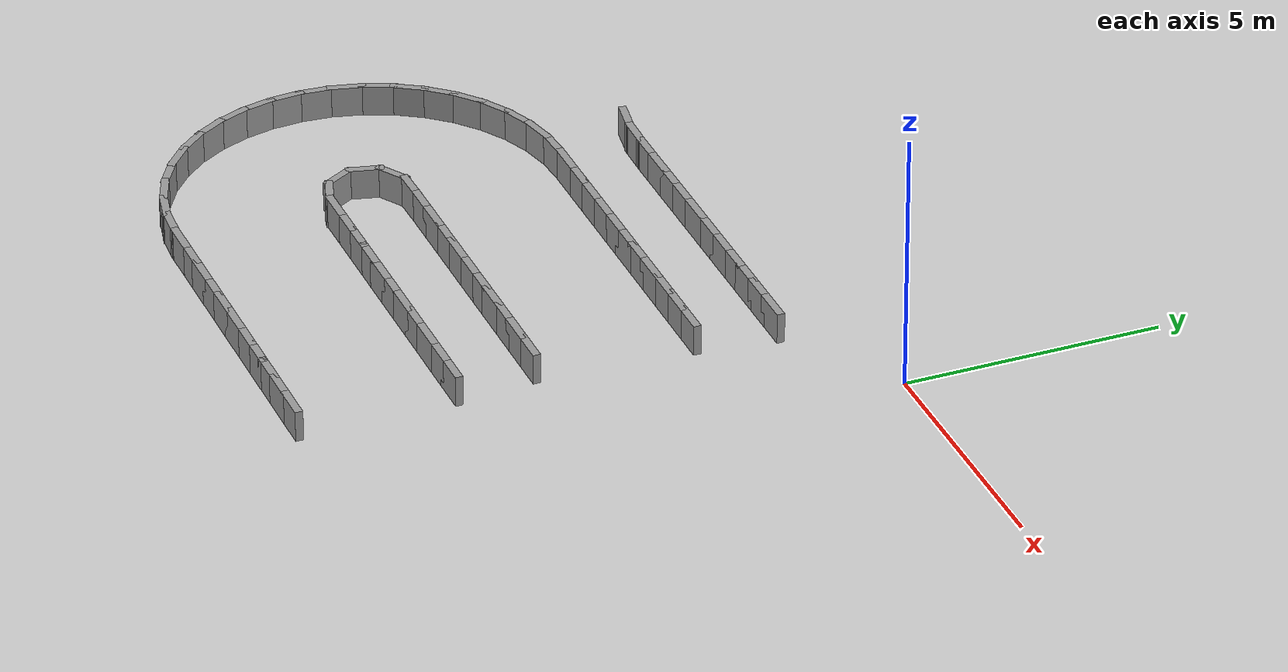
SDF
<sdf version="1.7">
 <world name="default">
  <model name="ground_plane">
   <static>1</static>
   <link name="link">
    <collision name="collision">
     <geometry><plane><normal>0 0 1</normal><size>100 100</size></plane></geometry>
     <surface><friction><ode><mu>100</mu><mu2>50</mu2></ode></friction></surface>
    </collision>
    <visual name="visual">
     <cast_shadows>0</cast_shadows>
     <geometry><plane><normal>0 0 1</normal><size>100 100</size></plane></geometry>
     <material>
      <script><uri>file://media/materials/scripts/gazebo.material</uri><name>Gazebo/Grey</name></script>
     </material>
    </visual>
   </link>
  </model>
  <model name="rand_serp_02">
   <link name="Wall_155">
    <collision name="Wall_155_Collision">
     <geometry><box><size>0.7500 0.1500 0.6000</size></box></geometry>
     <pose>0 0 0.3000 0 -0 0</pose>
    </collision>
    <visual name="Wall_155_Visual">
     <pose>0 0 0.3000 0 -0 0</pose>
     <geometry><box><size>0.7500 0.1500 0.6000</size></box></geometry>
     <material>
      <script><uri>file://media/materials/scripts/gazebo.material</uri><name>Gazebo/Grey</name></script>
      <ambient>1 1 1 1</ambient>
     </material>
    </visual>
    <pose>-2.8873 -6.0606 0 0 -0 3.14159</pose>
   </link>
   <link name="Wall_156">
    <collision name="Wall_156_Collision">
     <geometry><box><size>0.7500 0.1500 0.6000</size></box></geometry>
     <pose>0 0 0.3000 0 -0 0</pose>
    </collision>
    <visual name="Wall_156_Visual">
     <pose>0 0 0.3000 0 -0 0</pose>
     <geometry><box><size>0.7500 0.1500 0.6000</size></box></geometry>
     <material>
      <script><uri>file://media/materials/scripts/gazebo.material</uri><name>Gazebo/Grey</name></script>
      <ambient>1 1 1 1</ambient>
     </material>
    </visual>
    <pose>-3.4873 -6.0606 0 0 -0 3.14159</pose>
   </link>
   <link name="Wall_157">
    <collision name="Wall_157_Collision">
     <geometry><box><size>0.7500 0.1500 0.6000</size></box></geometry>
     <pose>0 0 0.3000 0 -0 0</pose>
    </collision>
    <visual name="Wall_157_Visual">
     <pose>0 0 0.3000 0 -0 0</pose>
     <geometry><box><size>0.7500 0.1500 0.6000</size></box></geometry>
     <material>
      <script><uri>file://media/materials/scripts/gazebo.material</uri><name>Gazebo/Grey</name></script>
      <ambient>1 1 1 1</ambient>
     </material>
    </visual>
    <pose>-4.0873 -6.0606 0 0 -0 3.14159</pose>
   </link>
   <link name="Wall_158">
    <collision name="Wall_158_Collision">
     <geometry><box><size>0.7500 0.1500 0.6000</size></box></geometry>
     <pose>0 0 0.3000 0 -0 0</pose>
    </collision>
    <visual name="Wall_158_Visual">
     <pose>0 0 0.3000 0 -0 0</pose>
     <geometry><box><size>0.7500 0.1500 0.6000</size></box></geometry>
     <material>
      <script><uri>file://media/materials/scripts/gazebo.material</uri><name>Gazebo/Grey</name></script>
      <ambient>1 1 1 1</ambient>
     </material>
    </visual>
    <pose>-4.6873 -6.0606 0 0 -0 3.14159</pose>
   </link>
   <link name="Wall_159">
    <collision name="Wall_159_Collision">
     <geometry><box><size>0.7500 0.1500 0.6000</size></box></geometry>
     <pose>0 0 0.3000 0 -0 0</pose>
    </collision>
    <visual name="Wall_159_Visual">
     <pose>0 0 0.3000 0 -0 0</pose>
     <geometry><box><size>0.7500 0.1500 0.6000</size></box></geometry>
     <material>
      <script><uri>file://media/materials/scripts/gazebo.material</uri><name>Gazebo/Grey</name></script>
      <ambient>1 1 1 1</ambient>
     </material>
    </visual>
    <pose>-5.2873 -6.0606 0 0 -0 3.14159</pose>
   </link>
   <link name="Wall_160">
    <collision name="Wall_160_Collision">
     <geometry><box><size>0.7500 0.1500 0.6000</size></box></geometry>
     <pose>0 0 0.3000 0 -0 0</pose>
    </collision>
    <visual name="Wall_160_Visual">
     <pose>0 0 0.3000 0 -0 0</pose>
     <geometry><box><size>0.7500 0.1500 0.6000</size></box></geometry>
     <material>
      <script><uri>file://media/materials/scripts/gazebo.material</uri><name>Gazebo/Grey</name></script>
      <ambient>1 1 1 1</ambient>
     </material>
    </visual>
    <pose>-5.8873 -6.0606 0 0 -0 3.14159</pose>
   </link>
   <link name="Wall_161">
    <collision name="Wall_161_Collision">
     <geometry><box><size>0.7500 0.1500 0.6000</size></box></geometry>
     <pose>0 0 0.3000 0 -0 0</pose>
    </collision>
    <visual name="Wall_161_Visual">
     <pose>0 0 0.3000 0 -0 0</pose>
     <geometry><box><size>0.7500 0.1500 0.6000</size></box></geometry>
     <material>
      <script><uri>file://media/materials/scripts/gazebo.material</uri><name>Gazebo/Grey</name></script>
      <ambient>1 1 1 1</ambient>
     </material>
    </visual>
    <pose>-6.4873 -6.0606 0 0 -0 3.14159</pose>
   </link>
   <link name="Wall_162">
    <collision name="Wall_162_Collision">
     <geometry><box><size>0.7500 0.1500 0.6000</size></box></geometry>
     <pose>0 0 0.3000 0 -0 0</pose>
    </collision>
    <visual name="Wall_162_Visual">
     <pose>0 0 0.3000 0 -0 0</pose>
     <geometry><box><size>0.7500 0.1500 0.6000</size></box></geometry>
     <material>
      <script><uri>file://media/materials/scripts/gazebo.material</uri><name>Gazebo/Grey</name></script>
      <ambient>1 1 1 1</ambient>
     </material>
    </visual>
    <pose>-7.0873 -6.0606 0 0 -0 3.14159</pose>
   </link>
   <link name="Wall_163">
    <collision name="Wall_163_Collision">
     <geometry><box><size>0.7500 0.1500 0.6000</size></box></geometry>
     <pose>0 0 0.3000 0 -0 0</pose>
    </collision>
    <visual name="Wall_163_Visual">
     <pose>0 0 0.3000 0 -0 0</pose>
     <geometry><box><size>0.7500 0.1500 0.6000</size></box></geometry>
     <material>
      <script><uri>file://media/materials/scripts/gazebo.material</uri><name>Gazebo/Grey</name></script>
      <ambient>1 1 1 1</ambient>
     </material>
    </visual>
    <pose>-7.6873 -6.0606 0 0 -0 3.14159</pose>
   </link>
   <link name="Wall_164">
    <collision name="Wall_164_Collision">
     <geometry><box><size>0.7500 0.1500 0.6000</size></box></geometry>
     <pose>0 0 0.3000 0 -0 0</pose>
    </collision>
    <visual name="Wall_164_Visual">
     <pose>0 0 0.3000 0 -0 0</pose>
     <geometry><box><size>0.7500 0.1500 0.6000</size></box></geometry>
     <material>
      <script><uri>file://media/materials/scripts/gazebo.material</uri><name>Gazebo/Grey</name></script>
      <ambient>1 1 1 1</ambient>
     </material>
    </visual>
    <pose>-8.2873 -6.0606 0 0 -0 3.14159</pose>
   </link>
   <link name="Wall_165">
    <collision name="Wall_165_Collision">
     <geometry><box><size>0.7496 0.1500 0.6000</size></box></geometry>
     <pose>0 0 0.3000 0 -0 0</pose>
    </collision>
    <visual name="Wall_165_Visual">
     <pose>0 0 0.3000 0 -0 0</pose>
     <geometry><box><size>0.7496 0.1500 0.6000</size></box></geometry>
     <material>
      <script><uri>file://media/materials/scripts/gazebo.material</uri><name>Gazebo/Grey</name></script>
      <ambient>1 1 1 1</ambient>
     </material>
    </visual>
    <pose>-8.8870 -6.0654 0 0 -0 -3.12563</pose>
   </link>
   <link name="Wall_166">
    <collision name="Wall_166_Collision">
     <geometry><box><size>0.7349 0.1500 0.6000</size></box></geometry>
     <pose>0 0 0.3000 0 -0 0</pose>
    </collision>
    <visual name="Wall_166_Visual">
     <pose>0 0 0.3000 0 -0 0</pose>
     <geometry><box><size>0.7349 0.1500 0.6000</size></box></geometry>
     <material>
      <script><uri>file://media/materials/scripts/gazebo.material</uri><name>Gazebo/Grey</name></script>
      <ambient>1 1 1 1</ambient>
     </material>
    </visual>
    <pose>-9.4365 -6.2224 0 0 -0 -2.59439</pose>
   </link>
   <link name="Wall_167">
    <collision name="Wall_167_Collision">
     <geometry><box><size>0.7349 0.1500 0.6000</size></box></geometry>
     <pose>0 0 0.3000 0 -0 0</pose>
    </collision>
    <visual name="Wall_167_Visual">
     <pose>0 0 0.3000 0 -0 0</pose>
     <geometry><box><size>0.7349 0.1500 0.6000</size></box></geometry>
     <material>
      <script><uri>file://media/materials/scripts/gazebo.material</uri><name>Gazebo/Grey</name></script>
      <ambient>1 1 1 1</ambient>
     </material>
    </visual>
    <pose>-9.7573 -6.6582 0 0 -0 -1.81590</pose>
   </link>
   <link name="Wall_168">
    <collision name="Wall_168_Collision">
     <geometry><box><size>0.7349 0.1500 0.6000</size></box></geometry>
     <pose>0 0 0.3000 0 -0 0</pose>
    </collision>
    <visual name="Wall_168_Visual">
     <pose>0 0 0.3000 0 -0 0</pose>
     <geometry><box><size>0.7349 0.1500 0.6000</size></box></geometry>
     <material>
      <script><uri>file://media/materials/scripts/gazebo.material</uri><name>Gazebo/Grey</name></script>
      <ambient>1 1 1 1</ambient>
     </material>
    </visual>
    <pose>-9.6794 -7.1937 0 0 -0 -1.03686</pose>
   </link>
   <link name="Wall_169">
    <collision name="Wall_169_Collision">
     <geometry><box><size>0.6794 0.1500 0.6000</size></box></geometry>
     <pose>0 0 0.3000 0 -0 0</pose>
    </collision>
    <visual name="Wall_169_Visual">
     <pose>0 0 0.3000 0 -0 0</pose>
     <geometry><box><size>0.6794 0.1500 0.6000</size></box></geometry>
     <material>
      <script><uri>file://media/materials/scripts/gazebo.material</uri><name>Gazebo/Grey</name></script>
      <ambient>1 1 1 1</ambient>
     </material>
    </visual>
    <pose>-9.2776 -7.5235 0 0 -0 -0.29921</pose>
   </link>
   <link name="Wall_170">
    <collision name="Wall_170_Collision">
     <geometry><box><size>0.7500 0.1500 0.6000</size></box></geometry>
     <pose>0 0 0.3000 0 -0 0</pose>
    </collision>
    <visual name="Wall_170_Visual">
     <pose>0 0 0.3000 0 -0 0</pose>
     <geometry><box><size>0.7500 0.1500 0.6000</size></box></geometry>
     <material>
      <script><uri>file://media/materials/scripts/gazebo.material</uri><name>Gazebo/Grey</name></script>
      <ambient>1 1 1 1</ambient>
     </material>
    </visual>
    <pose>-8.7246 -7.6015 0 0 -0 0.00000</pose>
   </link>
   <link name="Wall_171">
    <collision name="Wall_171_Collision">
     <geometry><box><size>0.7500 0.1500 0.6000</size></box></geometry>
     <pose>0 0 0.3000 0 -0 0</pose>
    </collision>
    <visual name="Wall_171_Visual">
     <pose>0 0 0.3000 0 -0 0</pose>
     <geometry><box><size>0.7500 0.1500 0.6000</size></box></geometry>
     <material>
      <script><uri>file://media/materials/scripts/gazebo.material</uri><name>Gazebo/Grey</name></script>
      <ambient>1 1 1 1</ambient>
     </material>
    </visual>
    <pose>-8.1246 -7.6015 0 0 -0 0.00000</pose>
   </link>
   <link name="Wall_172">
    <collision name="Wall_172_Collision">
     <geometry><box><size>0.7500 0.1500 0.6000</size></box></geometry>
     <pose>0 0 0.3000 0 -0 0</pose>
    </collision>
    <visual name="Wall_172_Visual">
     <pose>0 0 0.3000 0 -0 0</pose>
     <geometry><box><size>0.7500 0.1500 0.6000</size></box></geometry>
     <material>
      <script><uri>file://media/materials/scripts/gazebo.material</uri><name>Gazebo/Grey</name></script>
      <ambient>1 1 1 1</ambient>
     </material>
    </visual>
    <pose>-7.5246 -7.6015 0 0 -0 0.00000</pose>
   </link>
   <link name="Wall_173">
    <collision name="Wall_173_Collision">
     <geometry><box><size>0.7500 0.1500 0.6000</size></box></geometry>
     <pose>0 0 0.3000 0 -0 0</pose>
    </collision>
    <visual name="Wall_173_Visual">
     <pose>0 0 0.3000 0 -0 0</pose>
     <geometry><box><size>0.7500 0.1500 0.6000</size></box></geometry>
     <material>
      <script><uri>file://media/materials/scripts/gazebo.material</uri><name>Gazebo/Grey</name></script>
      <ambient>1 1 1 1</ambient>
     </material>
    </visual>
    <pose>-6.9246 -7.6015 0 0 -0 0.00000</pose>
   </link>
   <link name="Wall_174">
    <collision name="Wall_174_Collision">
     <geometry><box><size>0.7500 0.1500 0.6000</size></box></geometry>
     <pose>0 0 0.3000 0 -0 0</pose>
    </collision>
    <visual name="Wall_174_Visual">
     <pose>0 0 0.3000 0 -0 0</pose>
     <geometry><box><size>0.7500 0.1500 0.6000</size></box></geometry>
     <material>
      <script><uri>file://media/materials/scripts/gazebo.material</uri><name>Gazebo/Grey</name></script>
      <ambient>1 1 1 1</ambient>
     </material>
    </visual>
    <pose>-6.3246 -7.6015 0 0 -0 0.00000</pose>
   </link>
   <link name="Wall_175">
    <collision name="Wall_175_Collision">
     <geometry><box><size>0.7500 0.1500 0.6000</size></box></geometry>
     <pose>0 0 0.3000 0 -0 0</pose>
    </collision>
    <visual name="Wall_175_Visual">
     <pose>0 0 0.3000 0 -0 0</pose>
     <geometry><box><size>0.7500 0.1500 0.6000</size></box></geometry>
     <material>
      <script><uri>file://media/materials/scripts/gazebo.material</uri><name>Gazebo/Grey</name></script>
      <ambient>1 1 1 1</ambient>
     </material>
    </visual>
    <pose>-5.7246 -7.6015 0 0 -0 0.00000</pose>
   </link>
   <link name="Wall_176">
    <collision name="Wall_176_Collision">
     <geometry><box><size>0.7500 0.1500 0.6000</size></box></geometry>
     <pose>0 0 0.3000 0 -0 0</pose>
    </collision>
    <visual name="Wall_176_Visual">
     <pose>0 0 0.3000 0 -0 0</pose>
     <geometry><box><size>0.7500 0.1500 0.6000</size></box></geometry>
     <material>
      <script><uri>file://media/materials/scripts/gazebo.material</uri><name>Gazebo/Grey</name></script>
      <ambient>1 1 1 1</ambient>
     </material>
    </visual>
    <pose>-5.1246 -7.6015 0 0 -0 0.00000</pose>
   </link>
   <link name="Wall_177">
    <collision name="Wall_177_Collision">
     <geometry><box><size>0.7500 0.1500 0.6000</size></box></geometry>
     <pose>0 0 0.3000 0 -0 0</pose>
    </collision>
    <visual name="Wall_177_Visual">
     <pose>0 0 0.3000 0 -0 0</pose>
     <geometry><box><size>0.7500 0.1500 0.6000</size></box></geometry>
     <material>
      <script><uri>file://media/materials/scripts/gazebo.material</uri><name>Gazebo/Grey</name></script>
      <ambient>1 1 1 1</ambient>
     </material>
    </visual>
    <pose>-4.5246 -7.6015 0 0 -0 0.00000</pose>
   </link>
   <link name="Wall_178">
    <collision name="Wall_178_Collision">
     <geometry><box><size>0.7500 0.1500 0.6000</size></box></geometry>
     <pose>0 0 0.3000 0 -0 0</pose>
    </collision>
    <visual name="Wall_178_Visual">
     <pose>0 0 0.3000 0 -0 0</pose>
     <geometry><box><size>0.7500 0.1500 0.6000</size></box></geometry>
     <material>
      <script><uri>file://media/materials/scripts/gazebo.material</uri><name>Gazebo/Grey</name></script>
      <ambient>1 1 1 1</ambient>
     </material>
    </visual>
    <pose>-3.9246 -7.6015 0 0 -0 0.00000</pose>
   </link>
   <link name="Wall_179">
    <collision name="Wall_179_Collision">
     <geometry><box><size>0.7500 0.1500 0.6000</size></box></geometry>
     <pose>0 0 0.3000 0 -0 0</pose>
    </collision>
    <visual name="Wall_179_Visual">
     <pose>0 0 0.3000 0 -0 0</pose>
     <geometry><box><size>0.7500 0.1500 0.6000</size></box></geometry>
     <material>
      <script><uri>file://media/materials/scripts/gazebo.material</uri><name>Gazebo/Grey</name></script>
      <ambient>1 1 1 1</ambient>
     </material>
    </visual>
    <pose>-3.3246 -7.6015 0 0 -0 0.00000</pose>
   </link>
   <link name="Wall_180">
    <collision name="Wall_180_Collision">
     <geometry><box><size>0.7500 0.1500 0.6000</size></box></geometry>
     <pose>0 0 0.3000 0 -0 0</pose>
    </collision>
    <visual name="Wall_180_Visual">
     <pose>0 0 0.3000 0 -0 0</pose>
     <geometry><box><size>0.7500 0.1500 0.6000</size></box></geometry>
     <material>
      <script><uri>file://media/materials/scripts/gazebo.material</uri><name>Gazebo/Grey</name></script>
      <ambient>1 1 1 1</ambient>
     </material>
    </visual>
    <pose>-2.7246 -7.6015 0 0 -0 0.00000</pose>
   </link>
   <link name="Wall_286">
    <collision name="Wall_286_Collision">
     <geometry><box><size>0.7493 0.1500 0.6000</size></box></geometry>
     <pose>0 0 0.3000 0 -0 0</pose>
    </collision>
    <visual name="Wall_286_Visual">
     <pose>0 0 0.3000 0 -0 0</pose>
     <geometry><box><size>0.7493 0.1500 0.6000</size></box></geometry>
     <material>
      <script><uri>file://media/materials/scripts/gazebo.material</uri><name>Gazebo/Grey</name></script>
      <ambient>1 1 1 1</ambient>
     </material>
    </visual>
    <pose>-9.6903 -1.4422 0 0 -0 -0.16632</pose>
   </link>
   <link name="Wall_287">
    <collision name="Wall_287_Collision">
     <geometry><box><size>0.7497 0.1500 0.6000</size></box></geometry>
     <pose>0 0 0.3000 0 -0 0</pose>
    </collision>
    <visual name="Wall_287_Visual">
     <pose>0 0 0.3000 0 -0 0</pose>
     <geometry><box><size>0.7497 0.1500 0.6000</size></box></geometry>
     <material>
      <script><uri>file://media/materials/scripts/gazebo.material</uri><name>Gazebo/Grey</name></script>
      <ambient>1 1 1 1</ambient>
     </material>
    </visual>
    <pose>-9.0950 -1.4992 0 0 -0 -0.02466</pose>
   </link>
   <link name="Wall_288">
    <collision name="Wall_288_Collision">
     <geometry><box><size>0.7500 0.1500 0.6000</size></box></geometry>
     <pose>0 0 0.3000 0 -0 0</pose>
    </collision>
    <visual name="Wall_288_Visual">
     <pose>0 0 0.3000 0 -0 0</pose>
     <geometry><box><size>0.7500 0.1500 0.6000</size></box></geometry>
     <material>
      <script><uri>file://media/materials/scripts/gazebo.material</uri><name>Gazebo/Grey</name></script>
      <ambient>1 1 1 1</ambient>
     </material>
    </visual>
    <pose>-8.4952 -1.5066 0 0 -0 0.00000</pose>
   </link>
   <link name="Wall_289">
    <collision name="Wall_289_Collision">
     <geometry><box><size>0.7500 0.1500 0.6000</size></box></geometry>
     <pose>0 0 0.3000 0 -0 0</pose>
    </collision>
    <visual name="Wall_289_Visual">
     <pose>0 0 0.3000 0 -0 0</pose>
     <geometry><box><size>0.7500 0.1500 0.6000</size></box></geometry>
     <material>
      <script><uri>file://media/materials/scripts/gazebo.material</uri><name>Gazebo/Grey</name></script>
      <ambient>1 1 1 1</ambient>
     </material>
    </visual>
    <pose>-7.8952 -1.5066 0 0 -0 0.00000</pose>
   </link>
   <link name="Wall_290">
    <collision name="Wall_290_Collision">
     <geometry><box><size>0.7500 0.1500 0.6000</size></box></geometry>
     <pose>0 0 0.3000 0 -0 0</pose>
    </collision>
    <visual name="Wall_290_Visual">
     <pose>0 0 0.3000 0 -0 0</pose>
     <geometry><box><size>0.7500 0.1500 0.6000</size></box></geometry>
     <material>
      <script><uri>file://media/materials/scripts/gazebo.material</uri><name>Gazebo/Grey</name></script>
      <ambient>1 1 1 1</ambient>
     </material>
    </visual>
    <pose>-7.2952 -1.5066 0 0 -0 0.00000</pose>
   </link>
   <link name="Wall_291">
    <collision name="Wall_291_Collision">
     <geometry><box><size>0.7500 0.1500 0.6000</size></box></geometry>
     <pose>0 0 0.3000 0 -0 0</pose>
    </collision>
    <visual name="Wall_291_Visual">
     <pose>0 0 0.3000 0 -0 0</pose>
     <geometry><box><size>0.7500 0.1500 0.6000</size></box></geometry>
     <material>
      <script><uri>file://media/materials/scripts/gazebo.material</uri><name>Gazebo/Grey</name></script>
      <ambient>1 1 1 1</ambient>
     </material>
    </visual>
    <pose>-6.6952 -1.5066 0 0 -0 0.00000</pose>
   </link>
   <link name="Wall_292">
    <collision name="Wall_292_Collision">
     <geometry><box><size>0.7500 0.1500 0.6000</size></box></geometry>
     <pose>0 0 0.3000 0 -0 0</pose>
    </collision>
    <visual name="Wall_292_Visual">
     <pose>0 0 0.3000 0 -0 0</pose>
     <geometry><box><size>0.7500 0.1500 0.6000</size></box></geometry>
     <material>
      <script><uri>file://media/materials/scripts/gazebo.material</uri><name>Gazebo/Grey</name></script>
      <ambient>1 1 1 1</ambient>
     </material>
    </visual>
    <pose>-6.0952 -1.5066 0 0 -0 0.00000</pose>
   </link>
   <link name="Wall_293">
    <collision name="Wall_293_Collision">
     <geometry><box><size>0.7500 0.1500 0.6000</size></box></geometry>
     <pose>0 0 0.3000 0 -0 0</pose>
    </collision>
    <visual name="Wall_293_Visual">
     <pose>0 0 0.3000 0 -0 0</pose>
     <geometry><box><size>0.7500 0.1500 0.6000</size></box></geometry>
     <material>
      <script><uri>file://media/materials/scripts/gazebo.material</uri><name>Gazebo/Grey</name></script>
      <ambient>1 1 1 1</ambient>
     </material>
    </visual>
    <pose>-5.4952 -1.5066 0 0 -0 0.00000</pose>
   </link>
   <link name="Wall_294">
    <collision name="Wall_294_Collision">
     <geometry><box><size>0.7500 0.1500 0.6000</size></box></geometry>
     <pose>0 0 0.3000 0 -0 0</pose>
    </collision>
    <visual name="Wall_294_Visual">
     <pose>0 0 0.3000 0 -0 0</pose>
     <geometry><box><size>0.7500 0.1500 0.6000</size></box></geometry>
     <material>
      <script><uri>file://media/materials/scripts/gazebo.material</uri><name>Gazebo/Grey</name></script>
      <ambient>1 1 1 1</ambient>
     </material>
    </visual>
    <pose>-4.8952 -1.5066 0 0 -0 0.00000</pose>
   </link>
   <link name="Wall_295">
    <collision name="Wall_295_Collision">
     <geometry><box><size>0.7500 0.1500 0.6000</size></box></geometry>
     <pose>0 0 0.3000 0 -0 0</pose>
    </collision>
    <visual name="Wall_295_Visual">
     <pose>0 0 0.3000 0 -0 0</pose>
     <geometry><box><size>0.7500 0.1500 0.6000</size></box></geometry>
     <material>
      <script><uri>file://media/materials/scripts/gazebo.material</uri><name>Gazebo/Grey</name></script>
      <ambient>1 1 1 1</ambient>
     </material>
    </visual>
    <pose>-4.2952 -1.5066 0 0 -0 0.00000</pose>
   </link>
   <link name="Wall_296">
    <collision name="Wall_296_Collision">
     <geometry><box><size>0.7500 0.1500 0.6000</size></box></geometry>
     <pose>0 0 0.3000 0 -0 0</pose>
    </collision>
    <visual name="Wall_296_Visual">
     <pose>0 0 0.3000 0 -0 0</pose>
     <geometry><box><size>0.7500 0.1500 0.6000</size></box></geometry>
     <material>
      <script><uri>file://media/materials/scripts/gazebo.material</uri><name>Gazebo/Grey</name></script>
      <ambient>1 1 1 1</ambient>
     </material>
    </visual>
    <pose>-3.6952 -1.5066 0 0 -0 0.00000</pose>
   </link>
   <link name="Wall_297">
    <collision name="Wall_297_Collision">
     <geometry><box><size>0.7500 0.1500 0.6000</size></box></geometry>
     <pose>0 0 0.3000 0 -0 0</pose>
    </collision>
    <visual name="Wall_297_Visual">
     <pose>0 0 0.3000 0 -0 0</pose>
     <geometry><box><size>0.7500 0.1500 0.6000</size></box></geometry>
     <material>
      <script><uri>file://media/materials/scripts/gazebo.material</uri><name>Gazebo/Grey</name></script>
      <ambient>1 1 1 1</ambient>
     </material>
    </visual>
    <pose>-3.0952 -1.5066 0 0 -0 0.00000</pose>
   </link>
   <link name="Wall_298">
    <collision name="Wall_298_Collision">
     <geometry><box><size>0.7500 0.1500 0.6000</size></box></geometry>
     <pose>0 0 0.3000 0 -0 0</pose>
    </collision>
    <visual name="Wall_298_Visual">
     <pose>0 0 0.3000 0 -0 0</pose>
     <geometry><box><size>0.7500 0.1500 0.6000</size></box></geometry>
     <material>
      <script><uri>file://media/materials/scripts/gazebo.material</uri><name>Gazebo/Grey</name></script>
      <ambient>1 1 1 1</ambient>
     </material>
    </visual>
    <pose>-2.4952 -1.5066 0 0 -0 0.00000</pose>
   </link>
   <link name="Wall_341">
    <collision name="Wall_341_Collision">
     <geometry><box><size>0.7500 0.1500 0.6000</size></box></geometry>
     <pose>0 0 0.3000 0 -0 0</pose>
    </collision>
    <visual name="Wall_341_Visual">
     <pose>0 0 0.3000 0 -0 0</pose>
     <geometry><box><size>0.7500 0.1500 0.6000</size></box></geometry>
     <material>
      <script><uri>file://media/materials/scripts/gazebo.material</uri><name>Gazebo/Grey</name></script>
      <ambient>1 1 1 1</ambient>
     </material>
    </visual>
    <pose>-2.6928 -3.0475 0 0 -0 3.14159</pose>
   </link>
   <link name="Wall_342">
    <collision name="Wall_342_Collision">
     <geometry><box><size>0.7500 0.1500 0.6000</size></box></geometry>
     <pose>0 0 0.3000 0 -0 0</pose>
    </collision>
    <visual name="Wall_342_Visual">
     <pose>0 0 0.3000 0 -0 0</pose>
     <geometry><box><size>0.7500 0.1500 0.6000</size></box></geometry>
     <material>
      <script><uri>file://media/materials/scripts/gazebo.material</uri><name>Gazebo/Grey</name></script>
      <ambient>1 1 1 1</ambient>
     </material>
    </visual>
    <pose>-3.2928 -3.0475 0 0 -0 3.14159</pose>
   </link>
   <link name="Wall_343">
    <collision name="Wall_343_Collision">
     <geometry><box><size>0.7500 0.1500 0.6000</size></box></geometry>
     <pose>0 0 0.3000 0 -0 0</pose>
    </collision>
    <visual name="Wall_343_Visual">
     <pose>0 0 0.3000 0 -0 0</pose>
     <geometry><box><size>0.7500 0.1500 0.6000</size></box></geometry>
     <material>
      <script><uri>file://media/materials/scripts/gazebo.material</uri><name>Gazebo/Grey</name></script>
      <ambient>1 1 1 1</ambient>
     </material>
    </visual>
    <pose>-3.8928 -3.0475 0 0 -0 3.14159</pose>
   </link>
   <link name="Wall_344">
    <collision name="Wall_344_Collision">
     <geometry><box><size>0.7500 0.1500 0.6000</size></box></geometry>
     <pose>0 0 0.3000 0 -0 0</pose>
    </collision>
    <visual name="Wall_344_Visual">
     <pose>0 0 0.3000 0 -0 0</pose>
     <geometry><box><size>0.7500 0.1500 0.6000</size></box></geometry>
     <material>
      <script><uri>file://media/materials/scripts/gazebo.material</uri><name>Gazebo/Grey</name></script>
      <ambient>1 1 1 1</ambient>
     </material>
    </visual>
    <pose>-4.4928 -3.0475 0 0 -0 3.14159</pose>
   </link>
   <link name="Wall_345">
    <collision name="Wall_345_Collision">
     <geometry><box><size>0.7500 0.1500 0.6000</size></box></geometry>
     <pose>0 0 0.3000 0 -0 0</pose>
    </collision>
    <visual name="Wall_345_Visual">
     <pose>0 0 0.3000 0 -0 0</pose>
     <geometry><box><size>0.7500 0.1500 0.6000</size></box></geometry>
     <material>
      <script><uri>file://media/materials/scripts/gazebo.material</uri><name>Gazebo/Grey</name></script>
      <ambient>1 1 1 1</ambient>
     </material>
    </visual>
    <pose>-5.0928 -3.0475 0 0 -0 3.14159</pose>
   </link>
   <link name="Wall_346">
    <collision name="Wall_346_Collision">
     <geometry><box><size>0.7500 0.1500 0.6000</size></box></geometry>
     <pose>0 0 0.3000 0 -0 0</pose>
    </collision>
    <visual name="Wall_346_Visual">
     <pose>0 0 0.3000 0 -0 0</pose>
     <geometry><box><size>0.7500 0.1500 0.6000</size></box></geometry>
     <material>
      <script><uri>file://media/materials/scripts/gazebo.material</uri><name>Gazebo/Grey</name></script>
      <ambient>1 1 1 1</ambient>
     </material>
    </visual>
    <pose>-5.6928 -3.0475 0 0 -0 3.14159</pose>
   </link>
   <link name="Wall_347">
    <collision name="Wall_347_Collision">
     <geometry><box><size>0.7500 0.1500 0.6000</size></box></geometry>
     <pose>0 0 0.3000 0 -0 0</pose>
    </collision>
    <visual name="Wall_347_Visual">
     <pose>0 0 0.3000 0 -0 0</pose>
     <geometry><box><size>0.7500 0.1500 0.6000</size></box></geometry>
     <material>
      <script><uri>file://media/materials/scripts/gazebo.material</uri><name>Gazebo/Grey</name></script>
      <ambient>1 1 1 1</ambient>
     </material>
    </visual>
    <pose>-6.2928 -3.0475 0 0 -0 3.14159</pose>
   </link>
   <link name="Wall_348">
    <collision name="Wall_348_Collision">
     <geometry><box><size>0.7500 0.1500 0.6000</size></box></geometry>
     <pose>0 0 0.3000 0 -0 0</pose>
    </collision>
    <visual name="Wall_348_Visual">
     <pose>0 0 0.3000 0 -0 0</pose>
     <geometry><box><size>0.7500 0.1500 0.6000</size></box></geometry>
     <material>
      <script><uri>file://media/materials/scripts/gazebo.material</uri><name>Gazebo/Grey</name></script>
      <ambient>1 1 1 1</ambient>
     </material>
    </visual>
    <pose>-6.8928 -3.0475 0 0 -0 3.14159</pose>
   </link>
   <link name="Wall_349">
    <collision name="Wall_349_Collision">
     <geometry><box><size>0.7500 0.1500 0.6000</size></box></geometry>
     <pose>0 0 0.3000 0 -0 0</pose>
    </collision>
    <visual name="Wall_349_Visual">
     <pose>0 0 0.3000 0 -0 0</pose>
     <geometry><box><size>0.7500 0.1500 0.6000</size></box></geometry>
     <material>
      <script><uri>file://media/materials/scripts/gazebo.material</uri><name>Gazebo/Grey</name></script>
      <ambient>1 1 1 1</ambient>
     </material>
    </visual>
    <pose>-7.4928 -3.0475 0 0 -0 3.14159</pose>
   </link>
   <link name="Wall_350">
    <collision name="Wall_350_Collision">
     <geometry><box><size>0.7500 0.1500 0.6000</size></box></geometry>
     <pose>0 0 0.3000 0 -0 0</pose>
    </collision>
    <visual name="Wall_350_Visual">
     <pose>0 0 0.3000 0 -0 0</pose>
     <geometry><box><size>0.7500 0.1500 0.6000</size></box></geometry>
     <material>
      <script><uri>file://media/materials/scripts/gazebo.material</uri><name>Gazebo/Grey</name></script>
      <ambient>1 1 1 1</ambient>
     </material>
    </visual>
    <pose>-8.0928 -3.0475 0 0 -0 3.14159</pose>
   </link>
   <link name="Wall_351">
    <collision name="Wall_351_Collision">
     <geometry><box><size>0.7500 0.1500 0.6000</size></box></geometry>
     <pose>0 0 0.3000 0 -0 0</pose>
    </collision>
    <visual name="Wall_351_Visual">
     <pose>0 0 0.3000 0 -0 0</pose>
     <geometry><box><size>0.7500 0.1500 0.6000</size></box></geometry>
     <material>
      <script><uri>file://media/materials/scripts/gazebo.material</uri><name>Gazebo/Grey</name></script>
      <ambient>1 1 1 1</ambient>
     </material>
    </visual>
    <pose>-8.6928 -3.0475 0 0 -0 3.14159</pose>
   </link>
   <link name="Wall_352">
    <collision name="Wall_352_Collision">
     <geometry><box><size>0.7494 0.1500 0.6000</size></box></geometry>
     <pose>0 0 0.3000 0 -0 0</pose>
    </collision>
    <visual name="Wall_352_Visual">
     <pose>0 0 0.3000 0 -0 0</pose>
     <geometry><box><size>0.7494 0.1500 0.6000</size></box></geometry>
     <material>
      <script><uri>file://media/materials/scripts/gazebo.material</uri><name>Gazebo/Grey</name></script>
      <ambient>1 1 1 1</ambient>
     </material>
    </visual>
    <pose>-9.2920 -3.0662 0 0 -0 -3.07918</pose>
   </link>
   <link name="Wall_353">
    <collision name="Wall_353_Collision">
     <geometry><box><size>0.7493 0.1500 0.6000</size></box></geometry>
     <pose>0 0 0.3000 0 -0 0</pose>
    </collision>
    <visual name="Wall_353_Visual">
     <pose>0 0 0.3000 0 -0 0</pose>
     <geometry><box><size>0.7493 0.1500 0.6000</size></box></geometry>
     <material>
      <script><uri>file://media/materials/scripts/gazebo.material</uri><name>Gazebo/Grey</name></script>
      <ambient>1 1 1 1</ambient>
     </material>
    </visual>
    <pose>-9.8836 -3.1498 0 0 -0 -2.92301</pose>
   </link>
   <link name="Wall_354">
    <collision name="Wall_354_Collision">
     <geometry><box><size>0.7493 0.1500 0.6000</size></box></geometry>
     <pose>0 0 0.3000 0 -0 0</pose>
    </collision>
    <visual name="Wall_354_Visual">
     <pose>0 0 0.3000 0 -0 0</pose>
     <geometry><box><size>0.7493 0.1500 0.6000</size></box></geometry>
     <material>
      <script><uri>file://media/materials/scripts/gazebo.material</uri><name>Gazebo/Grey</name></script>
      <ambient>1 1 1 1</ambient>
     </material>
    </visual>
    <pose>-10.4547 -3.3252 0 0 -0 -2.76442</pose>
   </link>
   <link name="Wall_355">
    <collision name="Wall_355_Collision">
     <geometry><box><size>0.7493 0.1500 0.6000</size></box></geometry>
     <pose>0 0 0.3000 0 -0 0</pose>
    </collision>
    <visual name="Wall_355_Visual">
     <pose>0 0 0.3000 0 -0 0</pose>
     <geometry><box><size>0.7493 0.1500 0.6000</size></box></geometry>
     <material>
      <script><uri>file://media/materials/scripts/gazebo.material</uri><name>Gazebo/Grey</name></script>
      <ambient>1 1 1 1</ambient>
     </material>
    </visual>
    <pose>-10.9909 -3.5885 0 0 -0 -2.60583</pose>
   </link>
   <link name="Wall_356">
    <collision name="Wall_356_Collision">
     <geometry><box><size>0.7493 0.1500 0.6000</size></box></geometry>
     <pose>0 0 0.3000 0 -0 0</pose>
    </collision>
    <visual name="Wall_356_Visual">
     <pose>0 0 0.3000 0 -0 0</pose>
     <geometry><box><size>0.7493 0.1500 0.6000</size></box></geometry>
     <material>
      <script><uri>file://media/materials/scripts/gazebo.material</uri><name>Gazebo/Grey</name></script>
      <ambient>1 1 1 1</ambient>
     </material>
    </visual>
    <pose>-11.4789 -3.9332 0 0 -0 -2.44725</pose>
   </link>
   <link name="Wall_357">
    <collision name="Wall_357_Collision">
     <geometry><box><size>0.7493 0.1500 0.6000</size></box></geometry>
     <pose>0 0 0.3000 0 -0 0</pose>
    </collision>
    <visual name="Wall_357_Visual">
     <pose>0 0 0.3000 0 -0 0</pose>
     <geometry><box><size>0.7493 0.1500 0.6000</size></box></geometry>
     <material>
      <script><uri>file://media/materials/scripts/gazebo.material</uri><name>Gazebo/Grey</name></script>
      <ambient>1 1 1 1</ambient>
     </material>
    </visual>
    <pose>-11.9062 -4.3506 0 0 -0 -2.28866</pose>
   </link>
   <link name="Wall_358">
    <collision name="Wall_358_Collision">
     <geometry><box><size>0.7493 0.1500 0.6000</size></box></geometry>
     <pose>0 0 0.3000 0 -0 0</pose>
    </collision>
    <visual name="Wall_358_Visual">
     <pose>0 0 0.3000 0 -0 0</pose>
     <geometry><box><size>0.7493 0.1500 0.6000</size></box></geometry>
     <material>
      <script><uri>file://media/materials/scripts/gazebo.material</uri><name>Gazebo/Grey</name></script>
      <ambient>1 1 1 1</ambient>
     </material>
    </visual>
    <pose>-12.2623 -4.8303 0 0 -0 -2.13007</pose>
   </link>
   <link name="Wall_359">
    <collision name="Wall_359_Collision">
     <geometry><box><size>0.7493 0.1500 0.6000</size></box></geometry>
     <pose>0 0 0.3000 0 -0 0</pose>
    </collision>
    <visual name="Wall_359_Visual">
     <pose>0 0 0.3000 0 -0 0</pose>
     <geometry><box><size>0.7493 0.1500 0.6000</size></box></geometry>
     <material>
      <script><uri>file://media/materials/scripts/gazebo.material</uri><name>Gazebo/Grey</name></script>
      <ambient>1 1 1 1</ambient>
     </material>
    </visual>
    <pose>-12.5382 -5.3602 0 0 -0 -1.97148</pose>
   </link>
   <link name="Wall_360">
    <collision name="Wall_360_Collision">
     <geometry><box><size>0.7493 0.1500 0.6000</size></box></geometry>
     <pose>0 0 0.3000 0 -0 0</pose>
    </collision>
    <visual name="Wall_360_Visual">
     <pose>0 0 0.3000 0 -0 0</pose>
     <geometry><box><size>0.7493 0.1500 0.6000</size></box></geometry>
     <material>
      <script><uri>file://media/materials/scripts/gazebo.material</uri><name>Gazebo/Grey</name></script>
      <ambient>1 1 1 1</ambient>
     </material>
    </visual>
    <pose>-12.7269 -5.9270 0 0 -0 -1.81289</pose>
   </link>
   <link name="Wall_361">
    <collision name="Wall_361_Collision">
     <geometry><box><size>0.7493 0.1500 0.6000</size></box></geometry>
     <pose>0 0 0.3000 0 -0 0</pose>
    </collision>
    <visual name="Wall_361_Visual">
     <pose>0 0 0.3000 0 -0 0</pose>
     <geometry><box><size>0.7493 0.1500 0.6000</size></box></geometry>
     <material>
      <script><uri>file://media/materials/scripts/gazebo.material</uri><name>Gazebo/Grey</name></script>
      <ambient>1 1 1 1</ambient>
     </material>
    </visual>
    <pose>-12.8237 -6.5166 0 0 -0 -1.65430</pose>
   </link>
   <link name="Wall_362">
    <collision name="Wall_362_Collision">
     <geometry><box><size>0.7493 0.1500 0.6000</size></box></geometry>
     <pose>0 0 0.3000 0 -0 0</pose>
    </collision>
    <visual name="Wall_362_Visual">
     <pose>0 0 0.3000 0 -0 0</pose>
     <geometry><box><size>0.7493 0.1500 0.6000</size></box></geometry>
     <material>
      <script><uri>file://media/materials/scripts/gazebo.material</uri><name>Gazebo/Grey</name></script>
      <ambient>1 1 1 1</ambient>
     </material>
    </visual>
    <pose>-12.8262 -7.1140 0 0 -0 -1.49572</pose>
   </link>
   <link name="Wall_363">
    <collision name="Wall_363_Collision">
     <geometry><box><size>0.7493 0.1500 0.6000</size></box></geometry>
     <pose>0 0 0.3000 0 -0 0</pose>
    </collision>
    <visual name="Wall_363_Visual">
     <pose>0 0 0.3000 0 -0 0</pose>
     <geometry><box><size>0.7493 0.1500 0.6000</size></box></geometry>
     <material>
      <script><uri>file://media/materials/scripts/gazebo.material</uri><name>Gazebo/Grey</name></script>
      <ambient>1 1 1 1</ambient>
     </material>
    </visual>
    <pose>-12.7344 -7.7043 0 0 -0 -1.33713</pose>
   </link>
   <link name="Wall_364">
    <collision name="Wall_364_Collision">
     <geometry><box><size>0.7493 0.1500 0.6000</size></box></geometry>
     <pose>0 0 0.3000 0 -0 0</pose>
    </collision>
    <visual name="Wall_364_Visual">
     <pose>0 0 0.3000 0 -0 0</pose>
     <geometry><box><size>0.7493 0.1500 0.6000</size></box></geometry>
     <material>
      <script><uri>file://media/materials/scripts/gazebo.material</uri><name>Gazebo/Grey</name></script>
      <ambient>1 1 1 1</ambient>
     </material>
    </visual>
    <pose>-12.5504 -8.2727 0 0 -0 -1.17854</pose>
   </link>
   <link name="Wall_365">
    <collision name="Wall_365_Collision">
     <geometry><box><size>0.7493 0.1500 0.6000</size></box></geometry>
     <pose>0 0 0.3000 0 -0 0</pose>
    </collision>
    <visual name="Wall_365_Visual">
     <pose>0 0 0.3000 0 -0 0</pose>
     <geometry><box><size>0.7493 0.1500 0.6000</size></box></geometry>
     <material>
      <script><uri>file://media/materials/scripts/gazebo.material</uri><name>Gazebo/Grey</name></script>
      <ambient>1 1 1 1</ambient>
     </material>
    </visual>
    <pose>-12.2791 -8.8049 0 0 -0 -1.01995</pose>
   </link>
   <link name="Wall_366">
    <collision name="Wall_366_Collision">
     <geometry><box><size>0.7493 0.1500 0.6000</size></box></geometry>
     <pose>0 0 0.3000 0 -0 0</pose>
    </collision>
    <visual name="Wall_366_Visual">
     <pose>0 0 0.3000 0 -0 0</pose>
     <geometry><box><size>0.7493 0.1500 0.6000</size></box></geometry>
     <material>
      <script><uri>file://media/materials/scripts/gazebo.material</uri><name>Gazebo/Grey</name></script>
      <ambient>1 1 1 1</ambient>
     </material>
    </visual>
    <pose>-11.9270 -9.2876 0 0 -0 -0.86136</pose>
   </link>
   <link name="Wall_367">
    <collision name="Wall_367_Collision">
     <geometry><box><size>0.7493 0.1500 0.6000</size></box></geometry>
     <pose>0 0 0.3000 0 -0 0</pose>
    </collision>
    <visual name="Wall_367_Visual">
     <pose>0 0 0.3000 0 -0 0</pose>
     <geometry><box><size>0.7493 0.1500 0.6000</size></box></geometry>
     <material>
      <script><uri>file://media/materials/scripts/gazebo.material</uri><name>Gazebo/Grey</name></script>
      <ambient>1 1 1 1</ambient>
     </material>
    </visual>
    <pose>-11.5032 -9.7086 0 0 -0 -0.70278</pose>
   </link>
   <link name="Wall_368">
    <collision name="Wall_368_Collision">
     <geometry><box><size>0.7493 0.1500 0.6000</size></box></geometry>
     <pose>0 0 0.3000 0 -0 0</pose>
    </collision>
    <visual name="Wall_368_Visual">
     <pose>0 0 0.3000 0 -0 0</pose>
     <geometry><box><size>0.7493 0.1500 0.6000</size></box></geometry>
     <material>
      <script><uri>file://media/materials/scripts/gazebo.material</uri><name>Gazebo/Grey</name></script>
      <ambient>1 1 1 1</ambient>
     </material>
    </visual>
    <pose>-11.0182 -10.0574 0 0 -0 -0.54419</pose>
   </link>
   <link name="Wall_369">
    <collision name="Wall_369_Collision">
     <geometry><box><size>0.7493 0.1500 0.6000</size></box></geometry>
     <pose>0 0 0.3000 0 -0 0</pose>
    </collision>
    <visual name="Wall_369_Visual">
     <pose>0 0 0.3000 0 -0 0</pose>
     <geometry><box><size>0.7493 0.1500 0.6000</size></box></geometry>
     <material>
      <script><uri>file://media/materials/scripts/gazebo.material</uri><name>Gazebo/Grey</name></script>
      <ambient>1 1 1 1</ambient>
     </material>
    </visual>
    <pose>-10.4841 -10.3253 0 0 -0 -0.38560</pose>
   </link>
   <link name="Wall_370">
    <collision name="Wall_370_Collision">
     <geometry><box><size>0.7493 0.1500 0.6000</size></box></geometry>
     <pose>0 0 0.3000 0 -0 0</pose>
    </collision>
    <visual name="Wall_370_Visual">
     <pose>0 0 0.3000 0 -0 0</pose>
     <geometry><box><size>0.7493 0.1500 0.6000</size></box></geometry>
     <material>
      <script><uri>file://media/materials/scripts/gazebo.material</uri><name>Gazebo/Grey</name></script>
      <ambient>1 1 1 1</ambient>
     </material>
    </visual>
    <pose>-9.9145 -10.5054 0 0 -0 -0.22701</pose>
   </link>
   <link name="Wall_371">
    <collision name="Wall_371_Collision">
     <geometry><box><size>0.7494 0.1500 0.6000</size></box></geometry>
     <pose>0 0 0.3000 0 -0 0</pose>
    </collision>
    <visual name="Wall_371_Visual">
     <pose>0 0 0.3000 0 -0 0</pose>
     <geometry><box><size>0.7494 0.1500 0.6000</size></box></geometry>
     <material>
      <script><uri>file://media/materials/scripts/gazebo.material</uri><name>Gazebo/Grey</name></script>
      <ambient>1 1 1 1</ambient>
     </material>
    </visual>
    <pose>-9.3236 -10.5938 0 0 -0 -0.06979</pose>
   </link>
   <link name="Wall_372">
    <collision name="Wall_372_Collision">
     <geometry><box><size>0.7500 0.1500 0.6000</size></box></geometry>
     <pose>0 0 0.3000 0 -0 0</pose>
    </collision>
    <visual name="Wall_372_Visual">
     <pose>0 0 0.3000 0 -0 0</pose>
     <geometry><box><size>0.7500 0.1500 0.6000</size></box></geometry>
     <material>
      <script><uri>file://media/materials/scripts/gazebo.material</uri><name>Gazebo/Grey</name></script>
      <ambient>1 1 1 1</ambient>
     </material>
    </visual>
    <pose>-8.7246 -10.6147 0 0 -0 0.00000</pose>
   </link>
   <link name="Wall_373">
    <collision name="Wall_373_Collision">
     <geometry><box><size>0.7500 0.1500 0.6000</size></box></geometry>
     <pose>0 0 0.3000 0 -0 0</pose>
    </collision>
    <visual name="Wall_373_Visual">
     <pose>0 0 0.3000 0 -0 0</pose>
     <geometry><box><size>0.7500 0.1500 0.6000</size></box></geometry>
     <material>
      <script><uri>file://media/materials/scripts/gazebo.material</uri><name>Gazebo/Grey</name></script>
      <ambient>1 1 1 1</ambient>
     </material>
    </visual>
    <pose>-8.1246 -10.6147 0 0 -0 0.00000</pose>
   </link>
   <link name="Wall_374">
    <collision name="Wall_374_Collision">
     <geometry><box><size>0.7500 0.1500 0.6000</size></box></geometry>
     <pose>0 0 0.3000 0 -0 0</pose>
    </collision>
    <visual name="Wall_374_Visual">
     <pose>0 0 0.3000 0 -0 0</pose>
     <geometry><box><size>0.7500 0.1500 0.6000</size></box></geometry>
     <material>
      <script><uri>file://media/materials/scripts/gazebo.material</uri><name>Gazebo/Grey</name></script>
      <ambient>1 1 1 1</ambient>
     </material>
    </visual>
    <pose>-7.5246 -10.6147 0 0 -0 0.00000</pose>
   </link>
   <link name="Wall_375">
    <collision name="Wall_375_Collision">
     <geometry><box><size>0.7500 0.1500 0.6000</size></box></geometry>
     <pose>0 0 0.3000 0 -0 0</pose>
    </collision>
    <visual name="Wall_375_Visual">
     <pose>0 0 0.3000 0 -0 0</pose>
     <geometry><box><size>0.7500 0.1500 0.6000</size></box></geometry>
     <material>
      <script><uri>file://media/materials/scripts/gazebo.material</uri><name>Gazebo/Grey</name></script>
      <ambient>1 1 1 1</ambient>
     </material>
    </visual>
    <pose>-6.9246 -10.6147 0 0 -0 0.00000</pose>
   </link>
   <link name="Wall_376">
    <collision name="Wall_376_Collision">
     <geometry><box><size>0.7500 0.1500 0.6000</size></box></geometry>
     <pose>0 0 0.3000 0 -0 0</pose>
    </collision>
    <visual name="Wall_376_Visual">
     <pose>0 0 0.3000 0 -0 0</pose>
     <geometry><box><size>0.7500 0.1500 0.6000</size></box></geometry>
     <material>
      <script><uri>file://media/materials/scripts/gazebo.material</uri><name>Gazebo/Grey</name></script>
      <ambient>1 1 1 1</ambient>
     </material>
    </visual>
    <pose>-6.3246 -10.6147 0 0 -0 0.00000</pose>
   </link>
   <link name="Wall_377">
    <collision name="Wall_377_Collision">
     <geometry><box><size>0.7500 0.1500 0.6000</size></box></geometry>
     <pose>0 0 0.3000 0 -0 0</pose>
    </collision>
    <visual name="Wall_377_Visual">
     <pose>0 0 0.3000 0 -0 0</pose>
     <geometry><box><size>0.7500 0.1500 0.6000</size></box></geometry>
     <material>
      <script><uri>file://media/materials/scripts/gazebo.material</uri><name>Gazebo/Grey</name></script>
      <ambient>1 1 1 1</ambient>
     </material>
    </visual>
    <pose>-5.7246 -10.6147 0 0 -0 0.00000</pose>
   </link>
   <link name="Wall_378">
    <collision name="Wall_378_Collision">
     <geometry><box><size>0.7500 0.1500 0.6000</size></box></geometry>
     <pose>0 0 0.3000 0 -0 0</pose>
    </collision>
    <visual name="Wall_378_Visual">
     <pose>0 0 0.3000 0 -0 0</pose>
     <geometry><box><size>0.7500 0.1500 0.6000</size></box></geometry>
     <material>
      <script><uri>file://media/materials/scripts/gazebo.material</uri><name>Gazebo/Grey</name></script>
      <ambient>1 1 1 1</ambient>
     </material>
    </visual>
    <pose>-5.1246 -10.6147 0 0 -0 0.00000</pose>
   </link>
   <link name="Wall_379">
    <collision name="Wall_379_Collision">
     <geometry><box><size>0.7500 0.1500 0.6000</size></box></geometry>
     <pose>0 0 0.3000 0 -0 0</pose>
    </collision>
    <visual name="Wall_379_Visual">
     <pose>0 0 0.3000 0 -0 0</pose>
     <geometry><box><size>0.7500 0.1500 0.6000</size></box></geometry>
     <material>
      <script><uri>file://media/materials/scripts/gazebo.material</uri><name>Gazebo/Grey</name></script>
      <ambient>1 1 1 1</ambient>
     </material>
    </visual>
    <pose>-4.5246 -10.6147 0 0 -0 0.00000</pose>
   </link>
   <link name="Wall_380">
    <collision name="Wall_380_Collision">
     <geometry><box><size>0.7500 0.1500 0.6000</size></box></geometry>
     <pose>0 0 0.3000 0 -0 0</pose>
    </collision>
    <visual name="Wall_380_Visual">
     <pose>0 0 0.3000 0 -0 0</pose>
     <geometry><box><size>0.7500 0.1500 0.6000</size></box></geometry>
     <material>
      <script><uri>file://media/materials/scripts/gazebo.material</uri><name>Gazebo/Grey</name></script>
      <ambient>1 1 1 1</ambient>
     </material>
    </visual>
    <pose>-3.9246 -10.6147 0 0 -0 0.00000</pose>
   </link>
   <link name="Wall_381">
    <collision name="Wall_381_Collision">
     <geometry><box><size>0.7500 0.1500 0.6000</size></box></geometry>
     <pose>0 0 0.3000 0 -0 0</pose>
    </collision>
    <visual name="Wall_381_Visual">
     <pose>0 0 0.3000 0 -0 0</pose>
     <geometry><box><size>0.7500 0.1500 0.6000</size></box></geometry>
     <material>
      <script><uri>file://media/materials/scripts/gazebo.material</uri><name>Gazebo/Grey</name></script>
      <ambient>1 1 1 1</ambient>
     </material>
    </visual>
    <pose>-3.3246 -10.6147 0 0 -0 0.00000</pose>
   </link>
   <link name="Wall_382">
    <collision name="Wall_382_Collision">
     <geometry><box><size>0.7500 0.1500 0.6000</size></box></geometry>
     <pose>0 0 0.3000 0 -0 0</pose>
    </collision>
    <visual name="Wall_382_Visual">
     <pose>0 0 0.3000 0 -0 0</pose>
     <geometry><box><size>0.7500 0.1500 0.6000</size></box></geometry>
     <material>
      <script><uri>file://media/materials/scripts/gazebo.material</uri><name>Gazebo/Grey</name></script>
      <ambient>1 1 1 1</ambient>
     </material>
    </visual>
    <pose>-2.7246 -10.6147 0 0 -0 0.00000</pose>
   </link>
   <static>1</static>
  </model>
 </world>
</sdf>
